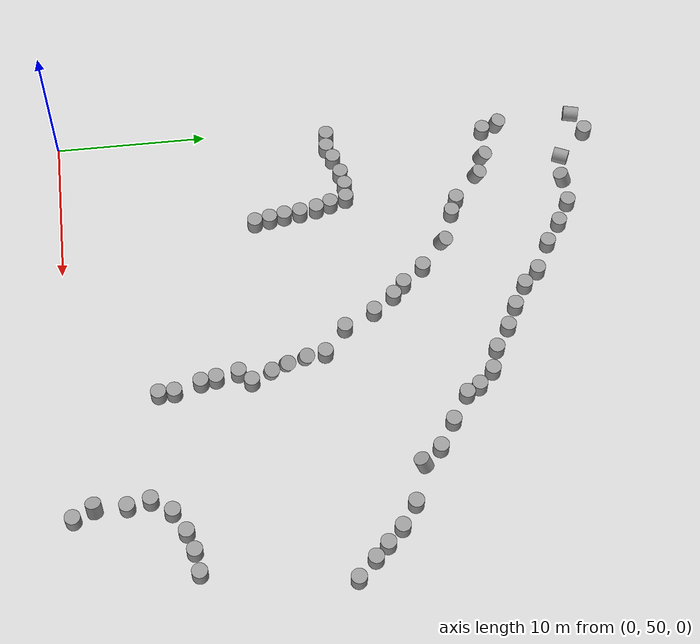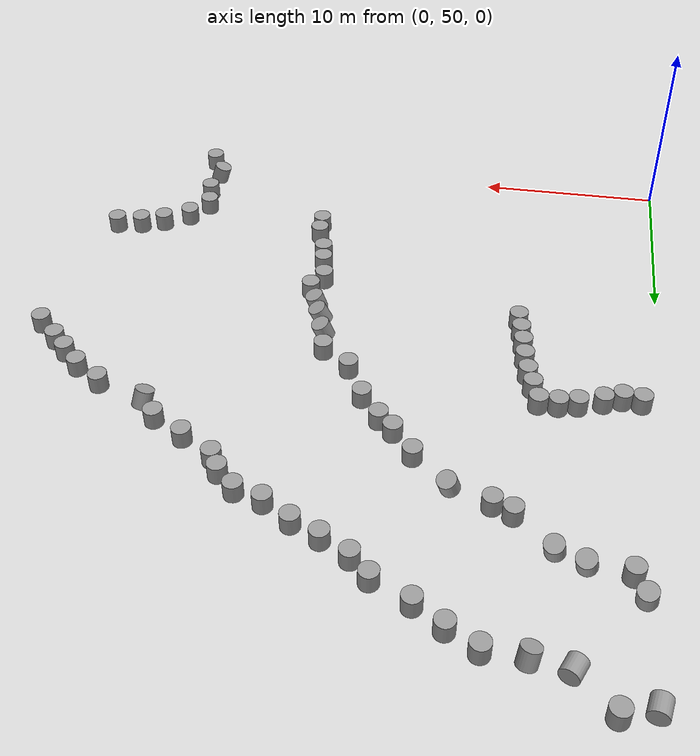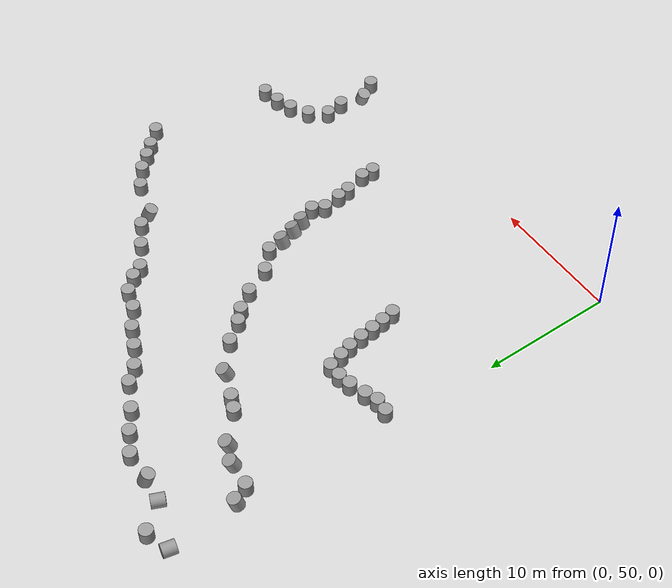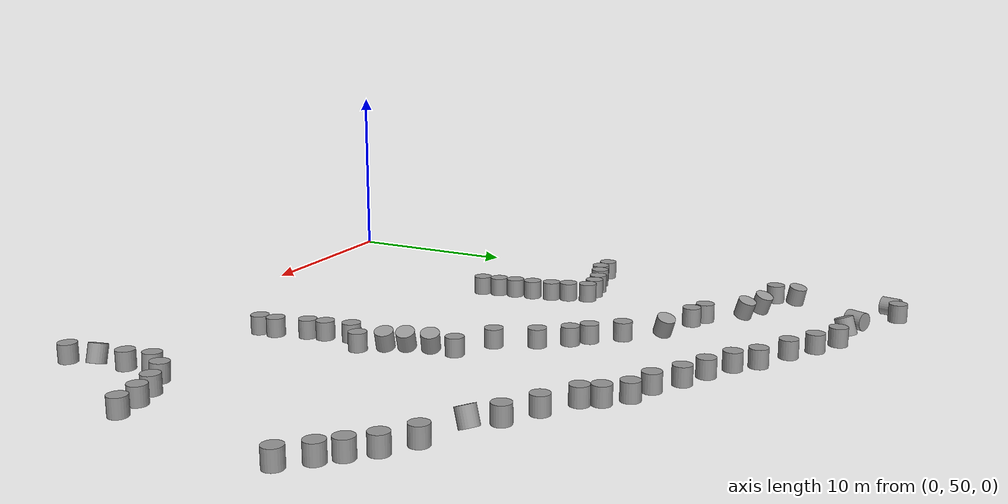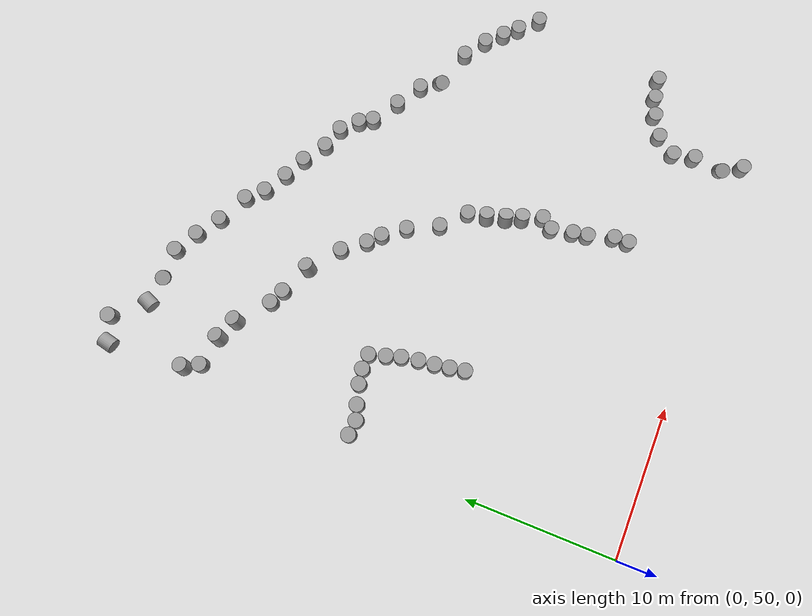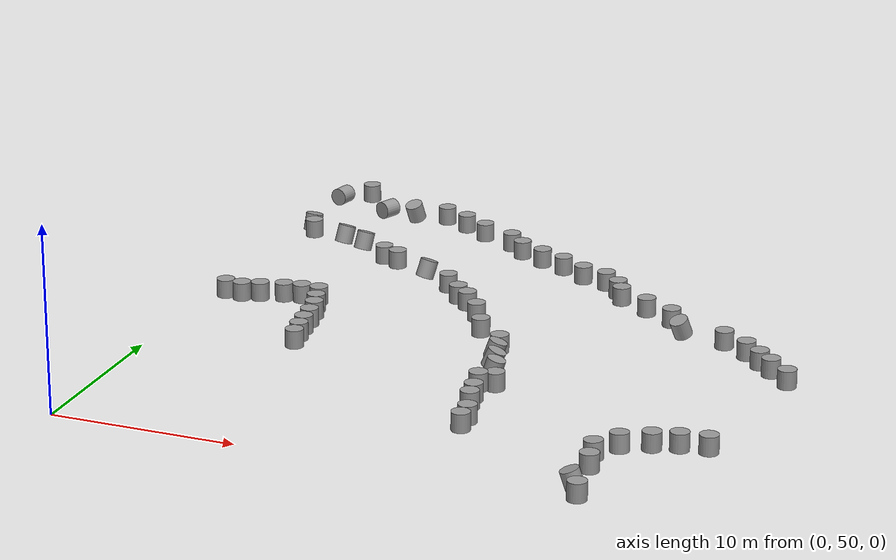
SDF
<sdf version="1.7">
 <world name="default">
  <model name="unit_cylinder_60">
   <pose>0.975299 68.308 0.451268 0 1e-06 0.001793</pose>
   <link name="link">
    <inertial>
     <mass>1</mass>
     <inertia><ixx>0.145833</ixx><ixy>0</ixy><ixz>0</ixz><iyy>0.145833</iyy><iyz>0</iyz><izz>0.125</izz></inertia>
    </inertial>
    <collision name="collision">
     <geometry><cylinder><radius>0.5</radius><length>1</length></cylinder></geometry>
    </collision>
    <visual name="visual">
     <geometry><cylinder><radius>0.5</radius><length>1</length></cylinder></geometry>
     <material>
      <script><name>Gazebo/Grey</name><uri>file://media/materials/scripts/gazebo.material</uri></script>
     </material>
    </visual>
   </link>
  </model>
  <model name="unit_cylinder_61">
   <pose>1.97258 68.2231 0.451278 -1.2e-05 -4e-06 0.012077</pose>
   <link name="link">
    <inertial>
     <mass>1</mass>
     <inertia><ixx>0.145833</ixx><ixy>0</ixy><ixz>0</ixz><iyy>0.145833</iyy><iyz>0</iyz><izz>0.125</izz></inertia>
    </inertial>
    <collision name="collision">
     <geometry><cylinder><radius>0.5</radius><length>1</length></cylinder></geometry>
    </collision>
    <visual name="visual">
     <geometry><cylinder><radius>0.5</radius><length>1</length></cylinder></geometry>
     <material>
      <script><name>Gazebo/Grey</name><uri>file://media/materials/scripts/gazebo.material</uri></script>
     </material>
    </visual>
   </link>
  </model>
  <model name="unit_cylinder_62">
   <pose>2.91678 68.557 0.451274 -2e-06 1e-06 0.006718</pose>
   <link name="link">
    <inertial>
     <mass>1</mass>
     <inertia><ixx>0.145833</ixx><ixy>0</ixy><ixz>0</ixz><iyy>0.145833</iyy><iyz>0</iyz><izz>0.125</izz></inertia>
    </inertial>
    <collision name="collision">
     <geometry><cylinder><radius>0.5</radius><length>1</length></cylinder></geometry>
    </collision>
    <visual name="visual">
     <geometry><cylinder><radius>0.5</radius><length>1</length></cylinder></geometry>
     <material>
      <script><name>Gazebo/Grey</name><uri>file://media/materials/scripts/gazebo.material</uri></script>
     </material>
    </visual>
   </link>
  </model>
  <model name="unit_cylinder_63">
   <pose>7.47351 62.8998 0.451274 1.9e-05 -1.1e-05 -0.000321</pose>
   <link name="link">
    <inertial>
     <mass>1</mass>
     <inertia><ixx>0.145833</ixx><ixy>0</ixy><ixz>0</ixz><iyy>0.145833</iyy><iyz>0</iyz><izz>0.125</izz></inertia>
    </inertial>
    <collision name="collision">
     <geometry><cylinder><radius>0.5</radius><length>1</length></cylinder></geometry>
    </collision>
    <visual name="visual">
     <geometry><cylinder><radius>0.5</radius><length>1</length></cylinder></geometry>
     <material>
      <script><name>Gazebo/Grey</name><uri>file://media/materials/scripts/gazebo.material</uri></script>
     </material>
    </visual>
   </link>
  </model>
  <model name="unit_cylinder_64">
   <pose>7.2899 63.8961 0.451271 -2.1e-05 5.3e-05 0.002016</pose>
   <link name="link">
    <inertial>
     <mass>1</mass>
     <inertia><ixx>0.145833</ixx><ixy>0</ixy><ixz>0</ixz><iyy>0.145833</iyy><iyz>0</iyz><izz>0.125</izz></inertia>
    </inertial>
    <collision name="collision">
     <geometry><cylinder><radius>0.5</radius><length>1</length></cylinder></geometry>
    </collision>
    <visual name="visual">
     <geometry><cylinder><radius>0.5</radius><length>1</length></cylinder></geometry>
     <material>
      <script><name>Gazebo/Grey</name><uri>file://media/materials/scripts/gazebo.material</uri></script>
     </material>
    </visual>
   </link>
  </model>
  <model name="unit_cylinder_65">
   <pose>7.13481 64.888 0.451264 -1.5e-05 6.5e-05 -0.002344</pose>
   <link name="link">
    <inertial>
     <mass>1</mass>
     <inertia><ixx>0.145833</ixx><ixy>0</ixy><ixz>0</ixz><iyy>0.145833</iyy><iyz>0</iyz><izz>0.125</izz></inertia>
    </inertial>
    <collision name="collision">
     <geometry><cylinder><radius>0.5</radius><length>1</length></cylinder></geometry>
    </collision>
    <visual name="visual">
     <geometry><cylinder><radius>0.5</radius><length>1</length></cylinder></geometry>
     <material>
      <script><name>Gazebo/Grey</name><uri>file://media/materials/scripts/gazebo.material</uri></script>
     </material>
    </visual>
   </link>
  </model>
  <model name="unit_cylinder_66">
   <pose>6.99698 65.9477 0.451263 -7e-06 4.4e-05 -0.009656</pose>
   <link name="link">
    <inertial>
     <mass>1</mass>
     <inertia><ixx>0.145833</ixx><ixy>0</ixy><ixz>0</ixz><iyy>0.145833</iyy><iyz>0</iyz><izz>0.125</izz></inertia>
    </inertial>
    <collision name="collision">
     <geometry><cylinder><radius>0.5</radius><length>1</length></cylinder></geometry>
    </collision>
    <visual name="visual">
     <geometry><cylinder><radius>0.5</radius><length>1</length></cylinder></geometry>
     <material>
      <script><name>Gazebo/Grey</name><uri>file://media/materials/scripts/gazebo.material</uri></script>
     </material>
    </visual>
   </link>
  </model>
  <model name="unit_cylinder_67">
   <pose>6.79149 67.0659 0.451263 -1.3e-05 3.1e-05 0.00218</pose>
   <link name="link">
    <inertial>
     <mass>1</mass>
     <inertia><ixx>0.145833</ixx><ixy>0</ixy><ixz>0</ixz><iyy>0.145833</iyy><iyz>0</iyz><izz>0.125</izz></inertia>
    </inertial>
    <collision name="collision">
     <geometry><cylinder><radius>0.5</radius><length>1</length></cylinder></geometry>
    </collision>
    <visual name="visual">
     <geometry><cylinder><radius>0.5</radius><length>1</length></cylinder></geometry>
     <material>
      <script><name>Gazebo/Grey</name><uri>file://media/materials/scripts/gazebo.material</uri></script>
     </material>
    </visual>
   </link>
  </model>
  <model name="unit_cylinder_68">
   <pose>4.1713 68.9443 0.45126 1e-06 2e-06 0.005928</pose>
   <link name="link">
    <inertial>
     <mass>1</mass>
     <inertia><ixx>0.145833</ixx><ixy>0</ixy><ixz>0</ixz><iyy>0.145833</iyy><iyz>0</iyz><izz>0.125</izz></inertia>
    </inertial>
    <collision name="collision">
     <geometry><cylinder><radius>0.5</radius><length>1</length></cylinder></geometry>
    </collision>
    <visual name="visual">
     <geometry><cylinder><radius>0.5</radius><length>1</length></cylinder></geometry>
     <material>
      <script><name>Gazebo/Grey</name><uri>file://media/materials/scripts/gazebo.material</uri></script>
     </material>
    </visual>
   </link>
  </model>
  <model name="unit_cylinder_69">
   <pose>5.15655 69.1191 0.451269 3e-06 2e-06 0.00194</pose>
   <link name="link">
    <inertial>
     <mass>1</mass>
     <inertia><ixx>0.145833</ixx><ixy>0</ixy><ixz>0</ixz><iyy>0.145833</iyy><iyz>0</iyz><izz>0.125</izz></inertia>
    </inertial>
    <collision name="collision">
     <geometry><cylinder><radius>0.5</radius><length>1</length></cylinder></geometry>
    </collision>
    <visual name="visual">
     <geometry><cylinder><radius>0.5</radius><length>1</length></cylinder></geometry>
     <material>
      <script><name>Gazebo/Grey</name><uri>file://media/materials/scripts/gazebo.material</uri></script>
     </material>
    </visual>
   </link>
  </model>
  <model name="unit_cylinder_70">
   <pose>6.48687 68.0186 0.451271 -4e-06 2.1e-05 0.002174</pose>
   <link name="link">
    <inertial>
     <mass>1</mass>
     <inertia><ixx>0.145833</ixx><ixy>0</ixy><ixz>0</ixz><iyy>0.145833</iyy><iyz>0</iyz><izz>0.125</izz></inertia>
    </inertial>
    <collision name="collision">
     <geometry><cylinder><radius>0.5</radius><length>1</length></cylinder></geometry>
    </collision>
    <visual name="visual">
     <geometry><cylinder><radius>0.5</radius><length>1</length></cylinder></geometry>
     <material>
      <script><name>Gazebo/Grey</name><uri>file://media/materials/scripts/gazebo.material</uri></script>
     </material>
    </visual>
   </link>
  </model>
  <model name="unit_cylinder_71">
   <pose>6.16808 69.1076 0.451271 -1e-05 1e-06 0.01648</pose>
   <link name="link">
    <inertial>
     <mass>1</mass>
     <inertia><ixx>0.145833</ixx><ixy>0</ixy><ixz>0</ixz><iyy>0.145833</iyy><iyz>0</iyz><izz>0.125</izz></inertia>
    </inertial>
    <collision name="collision">
     <geometry><cylinder><radius>0.5</radius><length>1</length></cylinder></geometry>
    </collision>
    <visual name="visual">
     <geometry><cylinder><radius>0.5</radius><length>1</length></cylinder></geometry>
     <material>
      <script><name>Gazebo/Grey</name><uri>file://media/materials/scripts/gazebo.material</uri></script>
     </material>
    </visual>
   </link>
  </model>
  <model name="unit_cylinder_85_clone_244_clone_199">
   <pose>1.57891 79 0.451277 -3e-06 2e-06 0.000411</pose>
   <link name="link">
    <inertial>
     <mass>1</mass>
     <inertia><ixx>0.145833</ixx><ixy>0</ixy><ixz>0</ixz><iyy>0.145833</iyy><iyz>0</iyz><izz>0.125</izz></inertia>
    </inertial>
    <collision name="collision">
     <geometry><cylinder><radius>0.5</radius><length>1</length></cylinder></geometry>
    </collision>
    <visual name="visual">
     <geometry><cylinder><radius>0.5</radius><length>1</length></cylinder></geometry>
     <material>
      <script><name>Gazebo/Grey</name><uri>file://media/materials/scripts/gazebo.material</uri></script>
     </material>
    </visual>
   </link>
  </model>
  <model name="unit_cylinder_85_clone_244_clone_200">
   <pose>3.63606 78.7416 0.392668 -0.329722 0.134496 -0.027327</pose>
   <link name="link">
    <inertial>
     <mass>1</mass>
     <inertia><ixx>0.145833</ixx><ixy>0</ixy><ixz>0</ixz><iyy>0.145833</iyy><iyz>0</iyz><izz>0.125</izz></inertia>
    </inertial>
    <collision name="collision">
     <geometry><cylinder><radius>0.5</radius><length>1</length></cylinder></geometry>
    </collision>
    <visual name="visual">
     <geometry><cylinder><radius>0.5</radius><length>1</length></cylinder></geometry>
     <material>
      <script><name>Gazebo/Grey</name><uri>file://media/materials/scripts/gazebo.material</uri></script>
     </material>
    </visual>
   </link>
  </model>
  <model name="unit_cylinder_85_clone_244_clone_201">
   <pose>1.04075 80.0966 0.351266 -0.213741 0.088801 -0.012894</pose>
   <link name="link">
    <inertial>
     <mass>1</mass>
     <inertia><ixx>0.145833</ixx><ixy>0</ixy><ixz>0</ixz><iyy>0.145833</iyy><iyz>0</iyz><izz>0.125</izz></inertia>
    </inertial>
    <collision name="collision">
     <geometry><cylinder><radius>0.5</radius><length>1</length></cylinder></geometry>
    </collision>
    <visual name="visual">
     <geometry><cylinder><radius>0.5</radius><length>1</length></cylinder></geometry>
     <material>
      <script><name>Gazebo/Grey</name><uri>file://media/materials/scripts/gazebo.material</uri></script>
     </material>
    </visual>
   </link>
  </model>
  <model name="unit_cylinder_85_clone_244_clone_203">
   <pose>5.06438 78.1524 0.388607 -0.316472 0.130805 -0.021737</pose>
   <link name="link">
    <inertial>
     <mass>1</mass>
     <inertia><ixx>0.145833</ixx><ixy>0</ixy><ixz>0</ixz><iyy>0.145833</iyy><iyz>0</iyz><izz>0.125</izz></inertia>
    </inertial>
    <collision name="collision">
     <geometry><cylinder><radius>0.5</radius><length>1</length></cylinder></geometry>
    </collision>
    <visual name="visual">
     <geometry><cylinder><radius>0.5</radius><length>1</length></cylinder></geometry>
     <material>
      <script><name>Gazebo/Grey</name><uri>file://media/materials/scripts/gazebo.material</uri></script>
     </material>
    </visual>
   </link>
  </model>
  <model name="unit_cylinder_85_clone_244_clone_204">
   <pose>7 76.4418 0.451273 -2e-06 1e-06 0.000409</pose>
   <link name="link">
    <inertial>
     <mass>1</mass>
     <inertia><ixx>0.145833</ixx><ixy>0</ixy><ixz>0</ixz><iyy>0.145833</iyy><iyz>0</iyz><izz>0.125</izz></inertia>
    </inertial>
    <collision name="collision">
     <geometry><cylinder><radius>0.5</radius><length>1</length></cylinder></geometry>
    </collision>
    <visual name="visual">
     <geometry><cylinder><radius>0.5</radius><length>1</length></cylinder></geometry>
     <material>
      <script><name>Gazebo/Grey</name><uri>file://media/materials/scripts/gazebo.material</uri></script>
     </material>
    </visual>
   </link>
  </model>
  <model name="unit_cylinder_85_clone_244_clone_205">
   <pose>8 76 0.451277 -5e-06 -1e-06 0.000408</pose>
   <link name="link">
    <inertial>
     <mass>1</mass>
     <inertia><ixx>0.145833</ixx><ixy>0</ixy><ixz>0</ixz><iyy>0.145833</iyy><iyz>0</iyz><izz>0.125</izz></inertia>
    </inertial>
    <collision name="collision">
     <geometry><cylinder><radius>0.5</radius><length>1</length></cylinder></geometry>
    </collision>
    <visual name="visual">
     <geometry><cylinder><radius>0.5</radius><length>1</length></cylinder></geometry>
     <material>
      <script><name>Gazebo/Grey</name><uri>file://media/materials/scripts/gazebo.material</uri></script>
     </material>
    </visual>
   </link>
  </model>
  <model name="unit_cylinder_85_clone_244_clone_206">
   <pose>10.0971 75.1621 0.399028 -0.322888 0.198645 -0.039675</pose>
   <link name="link">
    <inertial>
     <mass>1</mass>
     <inertia><ixx>0.145833</ixx><ixy>0</ixy><ixz>0</ixz><iyy>0.145833</iyy><iyz>0</iyz><izz>0.125</izz></inertia>
    </inertial>
    <collision name="collision">
     <geometry><cylinder><radius>0.5</radius><length>1</length></cylinder></geometry>
    </collision>
    <visual name="visual">
     <geometry><cylinder><radius>0.5</radius><length>1</length></cylinder></geometry>
     <material>
      <script><name>Gazebo/Grey</name><uri>file://media/materials/scripts/gazebo.material</uri></script>
     </material>
    </visual>
   </link>
  </model>
  <model name="unit_cylinder_85_clone_244_clone_207">
   <pose>12 73.5434 0.451282 -4.4e-05 1.7e-05 0.000403</pose>
   <link name="link">
    <inertial>
     <mass>1</mass>
     <inertia><ixx>0.145833</ixx><ixy>0</ixy><ixz>0</ixz><iyy>0.145833</iyy><iyz>0</iyz><izz>0.125</izz></inertia>
    </inertial>
    <collision name="collision">
     <geometry><cylinder><radius>0.5</radius><length>1</length></cylinder></geometry>
    </collision>
    <visual name="visual">
     <geometry><cylinder><radius>0.5</radius><length>1</length></cylinder></geometry>
     <material>
      <script><name>Gazebo/Grey</name><uri>file://media/materials/scripts/gazebo.material</uri></script>
     </material>
    </visual>
   </link>
  </model>
  <model name="unit_cylinder_85_clone_244_clone_210">
   <pose>15 70 0.451293 0 1e-06 0.000405</pose>
   <link name="link">
    <inertial>
     <mass>1</mass>
     <inertia><ixx>0.145833</ixx><ixy>0</ixy><ixz>0</ixz><iyy>0.145833</iyy><iyz>0</iyz><izz>0.125</izz></inertia>
    </inertial>
    <collision name="collision">
     <geometry><cylinder><radius>0.5</radius><length>1</length></cylinder></geometry>
    </collision>
    <visual name="visual">
     <geometry><cylinder><radius>0.5</radius><length>1</length></cylinder></geometry>
     <material>
      <script><name>Gazebo/Grey</name><uri>file://media/materials/scripts/gazebo.material</uri></script>
     </material>
    </visual>
   </link>
  </model>
  <model name="unit_cylinder_85_clone_244_clone_211">
   <pose>16 68 0.451293 -1e-06 -1.5e-05 0.000407</pose>
   <link name="link">
    <inertial>
     <mass>1</mass>
     <inertia><ixx>0.145833</ixx><ixy>0</ixy><ixz>0</ixz><iyy>0.145833</iyy><iyz>0</iyz><izz>0.125</izz></inertia>
    </inertial>
    <collision name="collision">
     <geometry><cylinder><radius>0.5</radius><length>1</length></cylinder></geometry>
    </collision>
    <visual name="visual">
     <geometry><cylinder><radius>0.5</radius><length>1</length></cylinder></geometry>
     <material>
      <script><name>Gazebo/Grey</name><uri>file://media/materials/scripts/gazebo.material</uri></script>
     </material>
    </visual>
   </link>
  </model>
  <model name="unit_cylinder_85_clone_244_clone_212">
   <pose>17.5933 66.5812 0.25 0 -0 0.000438</pose>
   <link name="link">
    <inertial>
     <mass>1</mass>
     <inertia><ixx>0.145833</ixx><ixy>0</ixy><ixz>0</ixz><iyy>0.145833</iyy><iyz>0</iyz><izz>0.125</izz></inertia>
    </inertial>
    <collision name="collision">
     <geometry><cylinder><radius>0.5</radius><length>1</length></cylinder></geometry>
    </collision>
    <visual name="visual">
     <geometry><cylinder><radius>0.5</radius><length>1</length></cylinder></geometry>
     <material>
      <script><name>Gazebo/Grey</name><uri>file://media/materials/scripts/gazebo.material</uri></script>
     </material>
    </visual>
   </link>
  </model>
  <model name="unit_cylinder_85_clone_244_clone_213">
   <pose>21.5003 75.1364 0.452231 0.003703 -0.002311 -0.012589</pose>
   <link name="link">
    <inertial>
     <mass>1</mass>
     <inertia><ixx>0.145833</ixx><ixy>0</ixy><ixz>0</ixz><iyy>0.145833</iyy><iyz>0</iyz><izz>0.125</izz></inertia>
    </inertial>
    <collision name="collision">
     <geometry><cylinder><radius>0.5</radius><length>1</length></cylinder></geometry>
    </collision>
    <visual name="visual">
     <geometry><cylinder><radius>0.5</radius><length>1</length></cylinder></geometry>
     <material>
      <script><name>Gazebo/Grey</name><uri>file://media/materials/scripts/gazebo.material</uri></script>
     </material>
    </visual>
   </link>
  </model>
  <model name="unit_cylinder_85_clone_244_clone_214">
   <pose>21.0009 76.0032 0.454215 0.004275 -0.002756 0.002502</pose>
   <link name="link">
    <inertial>
     <mass>1</mass>
     <inertia><ixx>0.145833</ixx><ixy>0</ixy><ixz>0</ixz><iyy>0.145833</iyy><iyz>0</iyz><izz>0.125</izz></inertia>
    </inertial>
    <collision name="collision">
     <geometry><cylinder><radius>0.5</radius><length>1</length></cylinder></geometry>
    </collision>
    <visual name="visual">
     <geometry><cylinder><radius>0.5</radius><length>1</length></cylinder></geometry>
     <material>
      <script><name>Gazebo/Grey</name><uri>file://media/materials/scripts/gazebo.material</uri></script>
     </material>
    </visual>
   </link>
  </model>
  <model name="unit_cylinder_85_clone_244_clone_215">
   <pose>19.9979 76.9971 0.455706 0.00429 -0.002747 0.000508</pose>
   <link name="link">
    <inertial>
     <mass>1</mass>
     <inertia><ixx>0.145833</ixx><ixy>0</ixy><ixz>0</ixz><iyy>0.145833</iyy><iyz>0</iyz><izz>0.125</izz></inertia>
    </inertial>
    <collision name="collision">
     <geometry><cylinder><radius>0.5</radius><length>1</length></cylinder></geometry>
    </collision>
    <visual name="visual">
     <geometry><cylinder><radius>0.5</radius><length>1</length></cylinder></geometry>
     <material>
      <script><name>Gazebo/Grey</name><uri>file://media/materials/scripts/gazebo.material</uri></script>
     </material>
    </visual>
   </link>
  </model>
  <model name="unit_cylinder_85_clone_244_clone_216">
   <pose>18.4988 77.47 0.453715 0.004098 -0.002691 0.0014</pose>
   <link name="link">
    <inertial>
     <mass>1</mass>
     <inertia><ixx>0.145833</ixx><ixy>0</ixy><ixz>0</ixz><iyy>0.145833</iyy><iyz>0</iyz><izz>0.125</izz></inertia>
    </inertial>
    <collision name="collision">
     <geometry><cylinder><radius>0.5</radius><length>1</length></cylinder></geometry>
    </collision>
    <visual name="visual">
     <geometry><cylinder><radius>0.5</radius><length>1</length></cylinder></geometry>
     <material>
      <script><name>Gazebo/Grey</name><uri>file://media/materials/scripts/gazebo.material</uri></script>
     </material>
    </visual>
   </link>
  </model>
  <model name="unit_cylinder_85_clone_244_clone_217">
   <pose>16.9986 78.441 0.453687 0.00404 -0.002673 -0.000317</pose>
   <link name="link">
    <inertial>
     <mass>1</mass>
     <inertia><ixx>0.145833</ixx><ixy>0</ixy><ixz>0</ixz><iyy>0.145833</iyy><iyz>0</iyz><izz>0.125</izz></inertia>
    </inertial>
    <collision name="collision">
     <geometry><cylinder><radius>0.5</radius><length>1</length></cylinder></geometry>
    </collision>
    <visual name="visual">
     <geometry><cylinder><radius>0.5</radius><length>1</length></cylinder></geometry>
     <material>
      <script><name>Gazebo/Grey</name><uri>file://media/materials/scripts/gazebo.material</uri></script>
     </material>
    </visual>
   </link>
  </model>
  <model name="unit_cylinder_85_clone_244_clone_218">
   <pose>15.5081 79.1375 0.452679 0.00373 -0.002444 -0.000206</pose>
   <link name="link">
    <inertial>
     <mass>1</mass>
     <inertia><ixx>0.145833</ixx><ixy>0</ixy><ixz>0</ixz><iyy>0.145833</iyy><iyz>0</iyz><izz>0.125</izz></inertia>
    </inertial>
    <collision name="collision">
     <geometry><cylinder><radius>0.5</radius><length>1</length></cylinder></geometry>
    </collision>
    <visual name="visual">
     <geometry><cylinder><radius>0.5</radius><length>1</length></cylinder></geometry>
     <material>
      <script><name>Gazebo/Grey</name><uri>file://media/materials/scripts/gazebo.material</uri></script>
     </material>
    </visual>
   </link>
  </model>
  <model name="unit_cylinder_85_clone_244_clone_219">
   <pose>13.9985 79.9979 0.452171 0.003647 -0.002392 5.5e-05</pose>
   <link name="link">
    <inertial>
     <mass>1</mass>
     <inertia><ixx>0.145833</ixx><ixy>0</ixy><ixz>0</ixz><iyy>0.145833</iyy><iyz>0</iyz><izz>0.125</izz></inertia>
    </inertial>
    <collision name="collision">
     <geometry><cylinder><radius>0.5</radius><length>1</length></cylinder></geometry>
    </collision>
    <visual name="visual">
     <geometry><cylinder><radius>0.5</radius><length>1</length></cylinder></geometry>
     <material>
      <script><name>Gazebo/Grey</name><uri>file://media/materials/scripts/gazebo.material</uri></script>
     </material>
    </visual>
   </link>
  </model>
  <model name="unit_cylinder_85_clone_244_clone_220">
   <pose>12.9953 80.9997 0.453525 0.00387 -0.002452 -0.010805</pose>
   <link name="link">
    <inertial>
     <mass>1</mass>
     <inertia><ixx>0.145833</ixx><ixy>0</ixy><ixz>0</ixz><iyy>0.145833</iyy><iyz>0</iyz><izz>0.125</izz></inertia>
    </inertial>
    <collision name="collision">
     <geometry><cylinder><radius>0.5</radius><length>1</length></cylinder></geometry>
    </collision>
    <visual name="visual">
     <geometry><cylinder><radius>0.5</radius><length>1</length></cylinder></geometry>
     <material>
      <script><name>Gazebo/Grey</name><uri>file://media/materials/scripts/gazebo.material</uri></script>
     </material>
    </visual>
   </link>
  </model>
  <model name="unit_cylinder_85_clone_244_clone_221">
   <pose>10.9985 81.9979 0.452296 0.00369 -0.002424 0.000292</pose>
   <link name="link">
    <inertial>
     <mass>1</mass>
     <inertia><ixx>0.145833</ixx><ixy>0</ixy><ixz>0</ixz><iyy>0.145833</iyy><iyz>0</iyz><izz>0.125</izz></inertia>
    </inertial>
    <collision name="collision">
     <geometry><cylinder><radius>0.5</radius><length>1</length></cylinder></geometry>
    </collision>
    <visual name="visual">
     <geometry><cylinder><radius>0.5</radius><length>1</length></cylinder></geometry>
     <material>
      <script><name>Gazebo/Grey</name><uri>file://media/materials/scripts/gazebo.material</uri></script>
     </material>
    </visual>
   </link>
  </model>
  <model name="unit_cylinder_85_clone_244_clone_222">
   <pose>9.49535 82.9975 0.453125 0.00418 -0.001844 0.000147</pose>
   <link name="link">
    <inertial>
     <mass>1</mass>
     <inertia><ixx>0.145833</ixx><ixy>0</ixy><ixz>0</ixz><iyy>0.145833</iyy><iyz>0</iyz><izz>0.125</izz></inertia>
    </inertial>
    <collision name="collision">
     <geometry><cylinder><radius>0.5</radius><length>1</length></cylinder></geometry>
    </collision>
    <visual name="visual">
     <geometry><cylinder><radius>0.5</radius><length>1</length></cylinder></geometry>
     <material>
      <script><name>Gazebo/Grey</name><uri>file://media/materials/scripts/gazebo.material</uri></script>
     </material>
    </visual>
   </link>
  </model>
  <model name="unit_cylinder_85_clone_244_clone_223">
   <pose>7.95267 83.8391 0.453718 0.004493 -0.00196 -0.003188</pose>
   <link name="link">
    <inertial>
     <mass>1</mass>
     <inertia><ixx>0.145833</ixx><ixy>0</ixy><ixz>0</ixz><iyy>0.145833</iyy><iyz>0</iyz><izz>0.125</izz></inertia>
    </inertial>
    <collision name="collision">
     <geometry><cylinder><radius>0.5</radius><length>1</length></cylinder></geometry>
    </collision>
    <visual name="visual">
     <geometry><cylinder><radius>0.5</radius><length>1</length></cylinder></geometry>
     <material>
      <script><name>Gazebo/Grey</name><uri>file://media/materials/scripts/gazebo.material</uri></script>
     </material>
    </visual>
   </link>
  </model>
  <model name="unit_cylinder_85_clone_244_clone_224">
   <pose>5.93828 83.8386 0.388845 0.318112 -0.128865 -0.043076</pose>
   <link name="link">
    <inertial>
     <mass>1</mass>
     <inertia><ixx>0.145833</ixx><ixy>0</ixy><ixz>0</ixz><iyy>0.145833</iyy><iyz>0</iyz><izz>0.125</izz></inertia>
    </inertial>
    <collision name="collision">
     <geometry><cylinder><radius>0.5</radius><length>1</length></cylinder></geometry>
    </collision>
    <visual name="visual">
     <geometry><cylinder><radius>0.5</radius><length>1</length></cylinder></geometry>
     <material>
      <script><name>Gazebo/Grey</name><uri>file://media/materials/scripts/gazebo.material</uri></script>
     </material>
    </visual>
   </link>
  </model>
  <model name="unit_cylinder_85_clone_244_clone_225">
   <pose>4.09384 84.0623 0.25 1.5708 -0.462184 -0.415152</pose>
   <link name="link">
    <inertial>
     <mass>1</mass>
     <inertia><ixx>0.145833</ixx><ixy>0</ixy><ixz>0</ixz><iyy>0.145833</iyy><iyz>0</iyz><izz>0.125</izz></inertia>
    </inertial>
    <collision name="collision">
     <geometry><cylinder><radius>0.5</radius><length>1</length></cylinder></geometry>
    </collision>
    <visual name="visual">
     <geometry><cylinder><radius>0.5</radius><length>1</length></cylinder></geometry>
     <material>
      <script><name>Gazebo/Grey</name><uri>file://media/materials/scripts/gazebo.material</uri></script>
     </material>
    </visual>
   </link>
  </model>
  <model name="unit_cylinder_85_clone_244_clone_226">
   <pose>2.31297 85.9398 0.452191 0.00414 -0.001535 -0.044459</pose>
   <link name="link">
    <inertial>
     <mass>1</mass>
     <inertia><ixx>0.145833</ixx><ixy>0</ixy><ixz>0</ixz><iyy>0.145833</iyy><iyz>0</iyz><izz>0.125</izz></inertia>
    </inertial>
    <collision name="collision">
     <geometry><cylinder><radius>0.5</radius><length>1</length></cylinder></geometry>
    </collision>
    <visual name="visual">
     <geometry><cylinder><radius>0.5</radius><length>1</length></cylinder></geometry>
     <material>
      <script><name>Gazebo/Grey</name><uri>file://media/materials/scripts/gazebo.material</uri></script>
     </material>
    </visual>
   </link>
  </model>
  <model name="unit_cylinder_85_clone_244_clone_227">
   <pose>0.682749 85.3268 0.25 1.5708 -0.185549 -0.215103</pose>
   <link name="link">
    <inertial>
     <mass>1</mass>
     <inertia><ixx>0.145833</ixx><ixy>0</ixy><ixz>0</ixz><iyy>0.145833</iyy><iyz>0</iyz><izz>0.125</izz></inertia>
    </inertial>
    <collision name="collision">
     <geometry><cylinder><radius>0.5</radius><length>1</length></cylinder></geometry>
    </collision>
    <visual name="visual">
     <geometry><cylinder><radius>0.5</radius><length>1</length></cylinder></geometry>
     <material>
      <script><name>Gazebo/Grey</name><uri>file://media/materials/scripts/gazebo.material</uri></script>
     </material>
    </visual>
   </link>
  </model>
  <model name="unit_cylinder_85_clone_244_clone_208">
   <pose>13.9451 71.3888 0.451286 2e-06 -2e-06 0.000393</pose>
   <link name="link">
    <inertial>
     <mass>1</mass>
     <inertia><ixx>0.145833</ixx><ixy>0</ixy><ixz>0</ixz><iyy>0.145833</iyy><iyz>0</iyz><izz>0.125</izz></inertia>
    </inertial>
    <collision name="collision">
     <geometry><cylinder><radius>0.5</radius><length>1</length></cylinder></geometry>
    </collision>
    <visual name="visual">
     <geometry><cylinder><radius>0.5</radius><length>1</length></cylinder></geometry>
     <material>
      <script><name>Gazebo/Grey</name><uri>file://media/materials/scripts/gazebo.material</uri></script>
     </material>
    </visual>
   </link>
  </model>
  <model name="unit_cylinder_85_clone_244_clone_209">
   <pose>13.1363 72.1305 0.451287 1.1e-05 -1e-06 0.025207</pose>
   <link name="link">
    <inertial>
     <mass>1</mass>
     <inertia><ixx>0.145833</ixx><ixy>0</ixy><ixz>0</ixz><iyy>0.145833</iyy><iyz>0</iyz><izz>0.125</izz></inertia>
    </inertial>
    <collision name="collision">
     <geometry><cylinder><radius>0.5</radius><length>1</length></cylinder></geometry>
    </collision>
    <visual name="visual">
     <geometry><cylinder><radius>0.5</radius><length>1</length></cylinder></geometry>
     <material>
      <script><name>Gazebo/Grey</name><uri>file://media/materials/scripts/gazebo.material</uri></script>
     </material>
    </visual>
   </link>
  </model>
  <model name="unit_cylinder_85_clone_244_clone_238">
   <pose>23.2759 74.026 0.452341 0.00368 -0.002371 -2e-06</pose>
   <link name="link">
    <inertial>
     <mass>1</mass>
     <inertia><ixx>0.145833</ixx><ixy>0</ixy><ixz>0</ixz><iyy>0.145833</iyy><iyz>0</iyz><izz>0.125</izz></inertia>
    </inertial>
    <collision name="collision">
     <geometry><cylinder><radius>0.5</radius><length>1</length></cylinder></geometry>
    </collision>
    <visual name="visual">
     <geometry><cylinder><radius>0.5</radius><length>1</length></cylinder></geometry>
     <material>
      <script><name>Gazebo/Grey</name><uri>file://media/materials/scripts/gazebo.material</uri></script>
     </material>
    </visual>
   </link>
  </model>
  <model name="unit_cylinder_85_clone_244_clone_239">
   <pose>24.9984 72.9979 0.452649 0.003735 -0.002393 -0.000141</pose>
   <link name="link">
    <inertial>
     <mass>1</mass>
     <inertia><ixx>0.145833</ixx><ixy>0</ixy><ixz>0</ixz><iyy>0.145833</iyy><iyz>0</iyz><izz>0.125</izz></inertia>
    </inertial>
    <collision name="collision">
     <geometry><cylinder><radius>0.5</radius><length>1</length></cylinder></geometry>
    </collision>
    <visual name="visual">
     <geometry><cylinder><radius>0.5</radius><length>1</length></cylinder></geometry>
     <material>
      <script><name>Gazebo/Grey</name><uri>file://media/materials/scripts/gazebo.material</uri></script>
     </material>
    </visual>
   </link>
  </model>
  <model name="unit_cylinder_85_clone_244_clone_240">
   <pose>25.8938 71.8114 0.406583 0.35058 -0.20729 -0.057886</pose>
   <link name="link">
    <inertial>
     <mass>1</mass>
     <inertia><ixx>0.145833</ixx><ixy>0</ixy><ixz>0</ixz><iyy>0.145833</iyy><iyz>0</iyz><izz>0.125</izz></inertia>
    </inertial>
    <collision name="collision">
     <geometry><cylinder><radius>0.5</radius><length>1</length></cylinder></geometry>
    </collision>
    <visual name="visual">
     <geometry><cylinder><radius>0.5</radius><length>1</length></cylinder></geometry>
     <material>
      <script><name>Gazebo/Grey</name><uri>file://media/materials/scripts/gazebo.material</uri></script>
     </material>
    </visual>
   </link>
  </model>
  <model name="unit_cylinder_85_clone_244_clone_241">
   <pose>28.5145 70.9975 0.453611 0.003937 -0.002546 -0.00276</pose>
   <link name="link">
    <inertial>
     <mass>1</mass>
     <inertia><ixx>0.145833</ixx><ixy>0</ixy><ixz>0</ixz><iyy>0.145833</iyy><iyz>0</iyz><izz>0.125</izz></inertia>
    </inertial>
    <collision name="collision">
     <geometry><cylinder><radius>0.5</radius><length>1</length></cylinder></geometry>
    </collision>
    <visual name="visual">
     <geometry><cylinder><radius>0.5</radius><length>1</length></cylinder></geometry>
     <material>
      <script><name>Gazebo/Grey</name><uri>file://media/materials/scripts/gazebo.material</uri></script>
     </material>
    </visual>
   </link>
  </model>
  <model name="unit_cylinder_85_clone_244_clone_242">
   <pose>29.9975 69.9975 0.454376 0.003624 -0.003566 0.000336</pose>
   <link name="link">
    <inertial>
     <mass>1</mass>
     <inertia><ixx>0.145833</ixx><ixy>0</ixy><ixz>0</ixz><iyy>0.145833</iyy><iyz>0</iyz><izz>0.125</izz></inertia>
    </inertial>
    <collision name="collision">
     <geometry><cylinder><radius>0.5</radius><length>1</length></cylinder></geometry>
    </collision>
    <visual name="visual">
     <geometry><cylinder><radius>0.5</radius><length>1</length></cylinder></geometry>
     <material>
      <script><name>Gazebo/Grey</name><uri>file://media/materials/scripts/gazebo.material</uri></script>
     </material>
    </visual>
   </link>
  </model>
  <model name="unit_cylinder_85_clone_244_clone_243">
   <pose>30.9975 68.9975 0.454285 0.00372 -0.003614 0.000428</pose>
   <link name="link">
    <inertial>
     <mass>1</mass>
     <inertia><ixx>0.145833</ixx><ixy>0</ixy><ixz>0</ixz><iyy>0.145833</iyy><iyz>0</iyz><izz>0.125</izz></inertia>
    </inertial>
    <collision name="collision">
     <geometry><cylinder><radius>0.5</radius><length>1</length></cylinder></geometry>
    </collision>
    <visual name="visual">
     <geometry><cylinder><radius>0.5</radius><length>1</length></cylinder></geometry>
     <material>
      <script><name>Gazebo/Grey</name><uri>file://media/materials/scripts/gazebo.material</uri></script>
     </material>
    </visual>
   </link>
  </model>
  <model name="unit_cylinder_85_clone_244_clone_244">
   <pose>17.8304 65.3056 0.387968 -0.134525 0.312661 -0.040831</pose>
   <link name="link">
    <inertial>
     <mass>1</mass>
     <inertia><ixx>0.145833</ixx><ixy>0</ixy><ixz>0</ixz><iyy>0.145833</iyy><iyz>0</iyz><izz>0.125</izz></inertia>
    </inertial>
    <collision name="collision">
     <geometry><cylinder><radius>0.5</radius><length>1</length></cylinder></geometry>
    </collision>
    <visual name="visual">
     <geometry><cylinder><radius>0.5</radius><length>1</length></cylinder></geometry>
     <material>
      <script><name>Gazebo/Grey</name><uri>file://media/materials/scripts/gazebo.material</uri></script>
     </material>
    </visual>
   </link>
  </model>
  <model name="unit_cylinder_85_clone_244_clone_245">
   <pose>18.1946 64.0709 0.406345 -0.128522 0.384272 -0.049473</pose>
   <link name="link">
    <inertial>
     <mass>1</mass>
     <inertia><ixx>0.145833</ixx><ixy>0</ixy><ixz>0</ixz><iyy>0.145833</iyy><iyz>0</iyz><izz>0.125</izz></inertia>
    </inertial>
    <collision name="collision">
     <geometry><cylinder><radius>0.5</radius><length>1</length></cylinder></geometry>
    </collision>
    <visual name="visual">
     <geometry><cylinder><radius>0.5</radius><length>1</length></cylinder></geometry>
     <material>
      <script><name>Gazebo/Grey</name><uri>file://media/materials/scripts/gazebo.material</uri></script>
     </material>
    </visual>
   </link>
  </model>
  <model name="unit_cylinder_85_clone_244_clone_246">
   <pose>18.5989 63.0359 0.375474 -0.075571 0.290749 -0.020981</pose>
   <link name="link">
    <inertial>
     <mass>1</mass>
     <inertia><ixx>0.145833</ixx><ixy>0</ixy><ixz>0</ixz><iyy>0.145833</iyy><iyz>0</iyz><izz>0.125</izz></inertia>
    </inertial>
    <collision name="collision">
     <geometry><cylinder><radius>0.5</radius><length>1</length></cylinder></geometry>
    </collision>
    <visual name="visual">
     <geometry><cylinder><radius>0.5</radius><length>1</length></cylinder></geometry>
     <material>
      <script><name>Gazebo/Grey</name><uri>file://media/materials/scripts/gazebo.material</uri></script>
     </material>
    </visual>
   </link>
  </model>
  <model name="unit_cylinder_85_clone_244_clone_247">
   <pose>19.1571 61.7416 0.25 0 -0 0.004677</pose>
   <link name="link">
    <inertial>
     <mass>1</mass>
     <inertia><ixx>0.145833</ixx><ixy>0</ixy><ixz>0</ixz><iyy>0.145833</iyy><iyz>0</iyz><izz>0.125</izz></inertia>
    </inertial>
    <collision name="collision">
     <geometry><cylinder><radius>0.5</radius><length>1</length></cylinder></geometry>
    </collision>
    <visual name="visual">
     <geometry><cylinder><radius>0.5</radius><length>1</length></cylinder></geometry>
     <material>
      <script><name>Gazebo/Grey</name><uri>file://media/materials/scripts/gazebo.material</uri></script>
     </material>
    </visual>
   </link>
  </model>
  <model name="unit_cylinder_85_clone_244_clone_248">
   <pose>18.538 60.9562 0.451294 8e-06 -4.8e-05 -0.103733</pose>
   <link name="link">
    <inertial>
     <mass>1</mass>
     <inertia><ixx>0.145833</ixx><ixy>0</ixy><ixz>0</ixz><iyy>0.145833</iyy><iyz>0</iyz><izz>0.125</izz></inertia>
    </inertial>
    <collision name="collision">
     <geometry><cylinder><radius>0.5</radius><length>1</length></cylinder></geometry>
    </collision>
    <visual name="visual">
     <geometry><cylinder><radius>0.5</radius><length>1</length></cylinder></geometry>
     <material>
      <script><name>Gazebo/Grey</name><uri>file://media/materials/scripts/gazebo.material</uri></script>
     </material>
    </visual>
   </link>
  </model>
  <model name="unit_cylinder_85_clone_244_clone_249">
   <pose>18.8272 59.5123 0.451319 -3.4e-05 0.000112 -0.001437</pose>
   <link name="link">
    <inertial>
     <mass>1</mass>
     <inertia><ixx>0.145833</ixx><ixy>0</ixy><ixz>0</ixz><iyy>0.145833</iyy><iyz>0</iyz><izz>0.125</izz></inertia>
    </inertial>
    <collision name="collision">
     <geometry><cylinder><radius>0.5</radius><length>1</length></cylinder></geometry>
    </collision>
    <visual name="visual">
     <geometry><cylinder><radius>0.5</radius><length>1</length></cylinder></geometry>
     <material>
      <script><name>Gazebo/Grey</name><uri>file://media/materials/scripts/gazebo.material</uri></script>
     </material>
    </visual>
   </link>
  </model>
  <model name="unit_cylinder_85_clone_244_clone_250">
   <pose>19.0013 58.5243 0.451369 -6.2e-05 0.000266 -0.003814</pose>
   <link name="link">
    <inertial>
     <mass>1</mass>
     <inertia><ixx>0.145833</ixx><ixy>0</ixy><ixz>0</ixz><iyy>0.145833</iyy><iyz>0</iyz><izz>0.125</izz></inertia>
    </inertial>
    <collision name="collision">
     <geometry><cylinder><radius>0.5</radius><length>1</length></cylinder></geometry>
    </collision>
    <visual name="visual">
     <geometry><cylinder><radius>0.5</radius><length>1</length></cylinder></geometry>
     <material>
      <script><name>Gazebo/Grey</name><uri>file://media/materials/scripts/gazebo.material</uri></script>
     </material>
    </visual>
   </link>
  </model>
  <model name="unit_cylinder_85_clone_244_clone_251">
   <pose>19.5231 56.8275 0.451302 7.5e-05 -0.00083 -0.062805</pose>
   <link name="link">
    <inertial>
     <mass>1</mass>
     <inertia><ixx>0.145833</ixx><ixy>0</ixy><ixz>0</ixz><iyy>0.145833</iyy><iyz>0</iyz><izz>0.125</izz></inertia>
    </inertial>
    <collision name="collision">
     <geometry><cylinder><radius>0.5</radius><length>1</length></cylinder></geometry>
    </collision>
    <visual name="visual">
     <geometry><cylinder><radius>0.5</radius><length>1</length></cylinder></geometry>
     <material>
      <script><name>Gazebo/Grey</name><uri>file://media/materials/scripts/gazebo.material</uri></script>
     </material>
    </visual>
   </link>
  </model>
  <model name="unit_cylinder_85_clone_244_clone_252">
   <pose>19.5511 55.8279 0.451301 -2.5e-05 -5.1e-05 0.004204</pose>
   <link name="link">
    <inertial>
     <mass>1</mass>
     <inertia><ixx>0.145833</ixx><ixy>0</ixy><ixz>0</ixz><iyy>0.145833</iyy><iyz>0</iyz><izz>0.125</izz></inertia>
    </inertial>
    <collision name="collision">
     <geometry><cylinder><radius>0.5</radius><length>1</length></cylinder></geometry>
    </collision>
    <visual name="visual">
     <geometry><cylinder><radius>0.5</radius><length>1</length></cylinder></geometry>
     <material>
      <script><name>Gazebo/Grey</name><uri>file://media/materials/scripts/gazebo.material</uri></script>
     </material>
    </visual>
   </link>
  </model>
  <model name="unit_cylinder_85_clone_244_clone_269">
   <pose>27.5169 50.2146 0.450002 -1.2e-05 4.7e-05 -2.1e-05</pose>
   <link name="link">
    <inertial>
     <mass>1</mass>
     <inertia><ixx>0.145833</ixx><ixy>0</ixy><ixz>0</ixz><iyy>0.145833</iyy><iyz>0</iyz><izz>0.125</izz></inertia>
    </inertial>
    <collision name="collision">
     <geometry><cylinder><radius>0.5</radius><length>1</length></cylinder></geometry>
    </collision>
    <visual name="visual">
     <geometry><cylinder><radius>0.5</radius><length>1</length></cylinder></geometry>
     <material>
      <script><name>Gazebo/Grey</name><uri>file://media/materials/scripts/gazebo.material</uri></script>
     </material>
    </visual>
   </link>
  </model>
  <model name="unit_cylinder_85_clone_244_clone_270">
   <pose>26.8435 51.4929 0.382749 0.063694 -0.31656 -0.022956</pose>
   <link name="link">
    <inertial>
     <mass>1</mass>
     <inertia><ixx>0.145833</ixx><ixy>0</ixy><ixz>0</ixz><iyy>0.145833</iyy><iyz>0</iyz><izz>0.125</izz></inertia>
    </inertial>
    <collision name="collision">
     <geometry><cylinder><radius>0.5</radius><length>1</length></cylinder></geometry>
    </collision>
    <visual name="visual">
     <geometry><cylinder><radius>0.5</radius><length>1</length></cylinder></geometry>
     <material>
      <script><name>Gazebo/Grey</name><uri>file://media/materials/scripts/gazebo.material</uri></script>
     </material>
    </visual>
   </link>
  </model>
  <model name="unit_cylinder_85_clone_244_clone_271">
   <pose>27 53.5162 0.449992 -6e-06 3.4e-05 -0.000129</pose>
   <link name="link">
    <inertial>
     <mass>1</mass>
     <inertia><ixx>0.145833</ixx><ixy>0</ixy><ixz>0</ixz><iyy>0.145833</iyy><iyz>0</iyz><izz>0.125</izz></inertia>
    </inertial>
    <collision name="collision">
     <geometry><cylinder><radius>0.5</radius><length>1</length></cylinder></geometry>
    </collision>
    <visual name="visual">
     <geometry><cylinder><radius>0.5</radius><length>1</length></cylinder></geometry>
     <material>
      <script><name>Gazebo/Grey</name><uri>file://media/materials/scripts/gazebo.material</uri></script>
     </material>
    </visual>
   </link>
  </model>
  <model name="unit_cylinder_85_clone_244_clone_272">
   <pose>26.7178 54.9531 0.455229 -0.01627 -0.037007 -0.030453</pose>
   <link name="link">
    <inertial>
     <mass>1</mass>
     <inertia><ixx>0.145833</ixx><ixy>0</ixy><ixz>0</ixz><iyy>0.145833</iyy><iyz>0</iyz><izz>0.125</izz></inertia>
    </inertial>
    <collision name="collision">
     <geometry><cylinder><radius>0.5</radius><length>1</length></cylinder></geometry>
    </collision>
    <visual name="visual">
     <geometry><cylinder><radius>0.5</radius><length>1</length></cylinder></geometry>
     <material>
      <script><name>Gazebo/Grey</name><uri>file://media/materials/scripts/gazebo.material</uri></script>
     </material>
    </visual>
   </link>
  </model>
  <model name="unit_cylinder_85_clone_244_clone_273">
   <pose>27.609 56.2386 0.47263 -0.040957 -0.033285 -0.045553</pose>
   <link name="link">
    <inertial>
     <mass>1</mass>
     <inertia><ixx>0.145833</ixx><ixy>0</ixy><ixz>0</ixz><iyy>0.145833</iyy><iyz>0</iyz><izz>0.125</izz></inertia>
    </inertial>
    <collision name="collision">
     <geometry><cylinder><radius>0.5</radius><length>1</length></cylinder></geometry>
    </collision>
    <visual name="visual">
     <geometry><cylinder><radius>0.5</radius><length>1</length></cylinder></geometry>
     <material>
      <script><name>Gazebo/Grey</name><uri>file://media/materials/scripts/gazebo.material</uri></script>
     </material>
    </visual>
   </link>
  </model>
  <model name="unit_cylinder_85_clone_244_clone_274">
   <pose>30.2814 57.4106 0.454856 -0.008919 -0.003959 -0.314717</pose>
   <link name="link">
    <inertial>
     <mass>1</mass>
     <inertia><ixx>0.145833</ixx><ixy>0</ixy><ixz>0</ixz><iyy>0.145833</iyy><iyz>0</iyz><izz>0.125</izz></inertia>
    </inertial>
    <collision name="collision">
     <geometry><cylinder><radius>0.5</radius><length>1</length></cylinder></geometry>
    </collision>
    <visual name="visual">
     <geometry><cylinder><radius>0.5</radius><length>1</length></cylinder></geometry>
     <material>
      <script><name>Gazebo/Grey</name><uri>file://media/materials/scripts/gazebo.material</uri></script>
     </material>
    </visual>
   </link>
  </model>
  <model name="unit_cylinder_85_clone_244_clone_275">
   <pose>31.6975 57.6202 0.450041 -1.2e-05 -1.4e-05 0.000409</pose>
   <link name="link">
    <inertial>
     <mass>1</mass>
     <inertia><ixx>0.145833</ixx><ixy>0</ixy><ixz>0</ixz><iyy>0.145833</iyy><iyz>0</iyz><izz>0.125</izz></inertia>
    </inertial>
    <collision name="collision">
     <geometry><cylinder><radius>0.5</radius><length>1</length></cylinder></geometry>
    </collision>
    <visual name="visual">
     <geometry><cylinder><radius>0.5</radius><length>1</length></cylinder></geometry>
     <material>
      <script><name>Gazebo/Grey</name><uri>file://media/materials/scripts/gazebo.material</uri></script>
     </material>
    </visual>
   </link>
  </model>
  <model name="unit_cylinder_85_clone_244_clone_276">
   <pose>29.001 57.0016 0.450003 1.2e-05 -7e-06 0.003369</pose>
   <link name="link">
    <inertial>
     <mass>1</mass>
     <inertia><ixx>0.145833</ixx><ixy>0</ixy><ixz>0</ixz><iyy>0.145833</iyy><iyz>0</iyz><izz>0.125</izz></inertia>
    </inertial>
    <collision name="collision">
     <geometry><cylinder><radius>0.5</radius><length>1</length></cylinder></geometry>
    </collision>
    <visual name="visual">
     <geometry><cylinder><radius>0.5</radius><length>1</length></cylinder></geometry>
     <material>
      <script><name>Gazebo/Grey</name><uri>file://media/materials/scripts/gazebo.material</uri></script>
     </material>
    </visual>
   </link>
  </model>
  <model name="unit_cylinder_85_clone_244_clone_335">
   <pose>31.8373 68.1563 0.454183 0.003728 -0.003613 0.000296</pose>
   <link name="link">
    <inertial>
     <mass>1</mass>
     <inertia><ixx>0.145833</ixx><ixy>0</ixy><ixz>0</ixz><iyy>0.145833</iyy><iyz>0</iyz><izz>0.125</izz></inertia>
    </inertial>
    <collision name="collision">
     <geometry><cylinder><radius>0.5</radius><length>1</length></cylinder></geometry>
    </collision>
    <visual name="visual">
     <geometry><cylinder><radius>0.5</radius><length>1</length></cylinder></geometry>
     <material>
      <script><name>Gazebo/Grey</name><uri>file://media/materials/scripts/gazebo.material</uri></script>
     </material>
    </visual>
   </link>
  </model>
  <model name="unit_cylinder_85_clone_244_clone_336">
   <pose>32.9976 66.9976 0.454059 0.003727 -0.003612 0.000523</pose>
   <link name="link">
    <inertial>
     <mass>1</mass>
     <inertia><ixx>0.145833</ixx><ixy>0</ixy><ixz>0</ixz><iyy>0.145833</iyy><iyz>0</iyz><izz>0.125</izz></inertia>
    </inertial>
    <collision name="collision">
     <geometry><cylinder><radius>0.5</radius><length>1</length></cylinder></geometry>
    </collision>
    <visual name="visual">
     <geometry><cylinder><radius>0.5</radius><length>1</length></cylinder></geometry>
     <material>
      <script><name>Gazebo/Grey</name><uri>file://media/materials/scripts/gazebo.material</uri></script>
     </material>
    </visual>
   </link>
  </model>
 </world>
</sdf>
